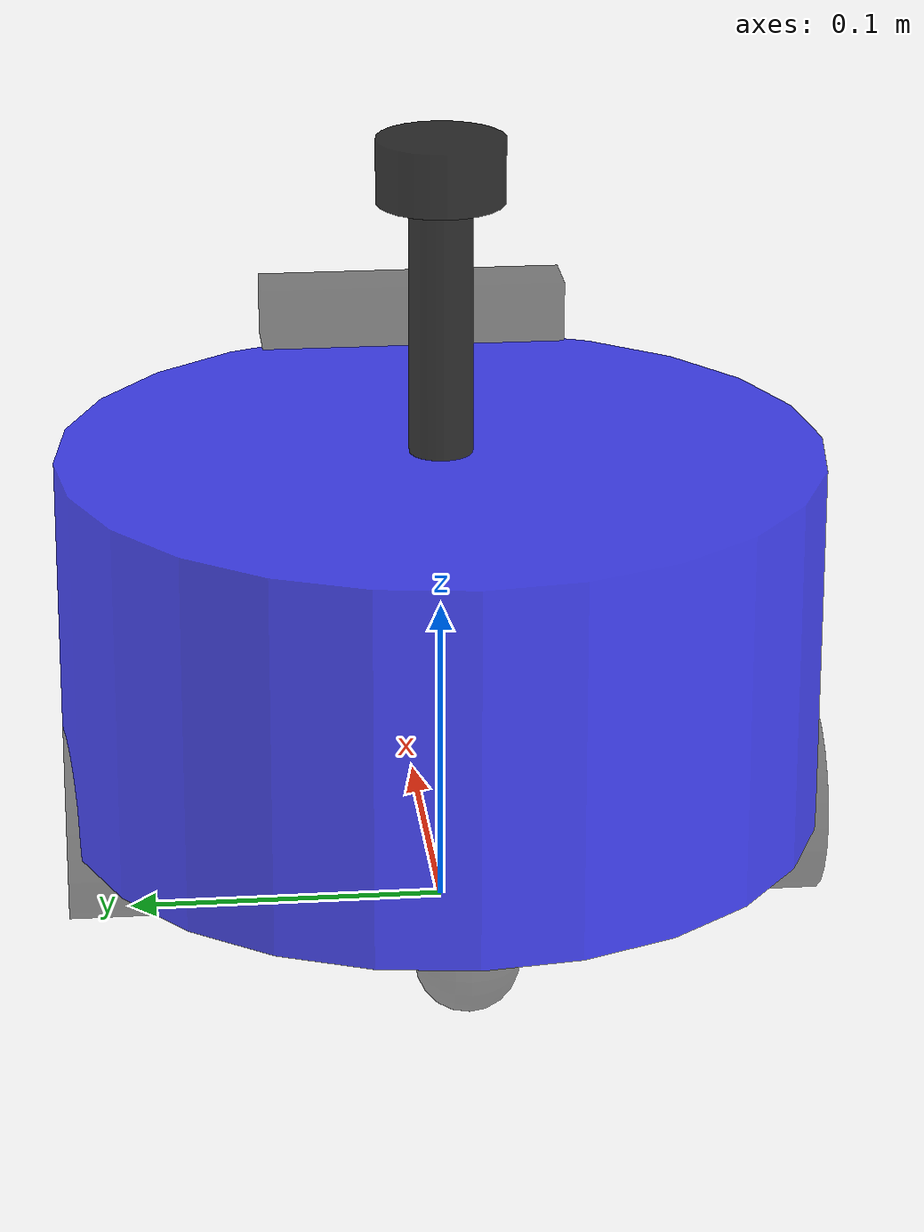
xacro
<?xml version="1.0"?>
<robot xmlns:xacro="http://www.ros.org/wiki/xacro" name="fishbot">
    <xacro:include filename="$(find fishbot_description)/urdf/fishbot/base.urdf.xacro" />
    <!-- 执行器组件 -->
    <xacro:include filename="$(find fishbot_description)/urdf/fishbot/actuator/wheel.urdf.xacro" />
    <xacro:include filename="$(find fishbot_description)/urdf/fishbot/actuator/caster.urdf.xacro" />
    <!-- 传感器组件 -->
    <xacro:include filename="$(find fishbot_description)/urdf/fishbot/sensor/imu.urdf.xacro" />
    <xacro:include filename="$(find fishbot_description)/urdf/fishbot/sensor/laser.urdf.xacro" />
    <xacro:include filename="$(find fishbot_description)/urdf/fishbot/sensor/camera.urdf.xacro" />
    <!-- Gazebo 插件 -->
    <xacro:include filename="$(find fishbot_description)/urdf/fishbot/plugins/gazebo_control_plugin.xacro" />
    <xacro:include filename="$(find fishbot_description)/urdf/fishbot/plugins/gazebo_sensor_plugin.xacro" />
    <xacro:include filename="$(find fishbot_description)/urdf/fishbot/fishbot.ros2_control.xacro" />

    <xacro:base_xacro length="0.12" radius="0.1" />
    <!-- 传感器 -->
    <xacro:imu_xacro xyz="0 0 0.02" />
    <xacro:laser_xacro xyz="0 0 0.10" />
    <xacro:camera_xacro xyz="0.10 0 0.075" />
    <!-- 执行器主动轮+从动轮 -->
    <xacro:wheel_xacro wheel_name="left" xyz="0 0.10 -0.06" />
    <xacro:wheel_xacro wheel_name="right" xyz="0 -0.10 -0.06" />
    <xacro:caster_xacro caster_name="front" xyz="0.08 0.0 -0.076" />
    <xacro:caster_xacro caster_name="back" xyz="-0.08 0.0 -0.076" />

    <xacro:gazebo_sensor_plugin />
    <xacro:fishbot_ros2_control />

</robot>

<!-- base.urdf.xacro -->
<robot xmlns:xacro="http://www.ros.org/wiki/xacro">
    <xacro:include filename="$(find fishbot_description)/urdf/fishbot/common_inertia.xacro" />

    <xacro:macro name="base_xacro" params="length radius">
        <link name="base_footprint" />

        <joint name="base_joint" type="fixed">
            <parent link="base_footprint" />
            <child link="base_link" />
            <origin xyz="0.0 0.0 ${length/2.0+0.0319}" rpy="0 0 0" />
        </joint>

        <link name="base_link">
            <visual>
                <origin xyz="0 0 0.0" rpy="0 0 0" />
                <geometry>
                    <cylinder length="${length}" radius="${length}" />
                </geometry>
                <material name="blue">
                    <color rgba="0.1 0.1 1.0 0.8" />
                </material>
            </visual>
            <collision>
                <origin xyz="0 0 0.0" rpy="0 0 0" />
                <geometry>
                    <cylinder length="${length}" radius="${length}" />
                </geometry>
                <material name="blue">
                    <color rgba="0.1 0.1 1.0 0.8" />
                </material>
            </collision>
            <xacro:cylinder_inertia m="1.0" r="${radius}" h="${length}" />
        </link>

    </xacro:macro>

</robot>

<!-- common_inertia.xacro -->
<robot xmlns:xacro="http://ros.org/wiki/xacro">
    <xacro:macro name="box_inertia" params="m w h d">
        <inertial>
            <mass value="${m}" />
            <inertia ixx="${(m/12) * (h*h + d*d)}" ixy="0.0" ixz="0.0" iyy="${(m/12) * (w*w + d*d)}"
                iyz="0.0" izz="${(m/12) * (w*w + h*h)}" />
        </inertial>
    </xacro:macro>

    <xacro:macro name="cylinder_inertia" params="m r h">
        <inertial>
            <mass value="${m}" />
            <inertia ixx="${(m/12) * (3*r*r + h*h)}" ixy="0" ixz="0" iyy="${(m/12) * (3*r*r + h*h)}"
                iyz="0" izz="${(m/2) * (r*r)}" />
        </inertial>
    </xacro:macro>

    <xacro:macro name="sphere_inertia" params="m r">
        <inertial>
            <mass value="${m}" />
            <inertia ixx="${(2/5) * m * (r*r)}" ixy="0.0" ixz="0.0" iyy="${(2/5) * m * (r*r)}"
                iyz="0.0" izz="${(2/5) * m * (r*r)}" />
        </inertial>
    </xacro:macro>

</robot>

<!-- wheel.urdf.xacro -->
<robot xmlns:xacro="http://www.ros.org/wiki/xacro">
    <xacro:include filename="$(find fishbot_description)/urdf/fishbot/common_inertia.xacro" />
    <xacro:macro name="wheel_xacro" params="wheel_name xyz">

        <link name="${wheel_name}_wheel_link">
            <visual>
                <origin xyz="0 0 0" rpy="1.57079 0 0" />
                <geometry>
                    <cylinder length="0.04" radius="0.032" />
                </geometry>
                <material name="black">
                    <color rgba="0.0 0.0 0.0 0.5"/>
                </material>
            </visual>
            <collision>
                <origin xyz="0 0 0" rpy="1.57079 0 0" />
                <geometry>
                    <cylinder length="0.04" radius="0.032" />
                </geometry>
                <material name="black">
                    <color rgba="0.0 0.0 0.0 0.5"/>
                </material>

            </collision>
            <xacro:cylinder_inertia m="0.1" h="0.04" r="0.032"/>
        </link>

        <joint name="${wheel_name}_wheel_joint" type="continuous">
            <parent link="base_link" />
            <child link="${wheel_name}_wheel_link" />
            <origin xyz="${xyz}" />
            <axis xyz="0 1 0" />
        </joint>

       <gazebo reference="${wheel_name}_wheel_link">
            <material>Gazebo/Black</material>
        </gazebo>

        <gazebo reference="${wheel_name}_wheel_link">
            <mu1 value="20.0" />
            <mu2 value="20.0" />
            <kp value="1000000000.0" />
            <kd value="1.0" />
        </gazebo>

    </xacro:macro>
</robot>

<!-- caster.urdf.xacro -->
<robot xmlns:xacro="http://www.ros.org/wiki/xacro">
    <xacro:macro name="caster_xacro" params="caster_name xyz">
        <xacro:include filename="$(find fishbot_description)/urdf/fishbot/common_inertia.xacro" />

        <link name="${caster_name}_caster_link">
            <visual>
                <origin xyz="0 0 0" rpy="1.57079 0 0" />
                <geometry>
                    <sphere radius="0.016" />
                </geometry>
                <material name="black">
                    <color rgba="0.0 0.0 0.0 0.5" />
                </material>
            </visual>
            <collision>
                <origin xyz="0 0 0" rpy="1.57079 0 0" />
                <geometry>
                    <sphere radius="0.016" />
                </geometry>
                <material name="black">
                    <color rgba="0.0 0.0 0.0 0.5" />
                </material>
            </collision>
            <xacro:sphere_inertia m="0.01" r="0.016" />
        </link>

        <joint name="${caster_name}_caster_joint" type="fixed">
            <parent link="base_link" />
            <child link="${caster_name}_caster_link" />
            <origin xyz="${xyz}" />
        </joint>

        <gazebo reference="${caster_name}_caster_link">
            <material>Gazebo/Black</material>
        </gazebo>

        <gazebo reference="${caster_name}_caster_link">
            <mu1 value="0.0" />
            <mu2 value="0.0" />
            <kp value="1000000000.0" />
            <kd value="1.0" />
        </gazebo>
    </xacro:macro>
</robot>

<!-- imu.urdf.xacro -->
<robot xmlns:xacro="http://www.ros.org/wiki/xacro">
    <xacro:include filename="$(find fishbot_description)/urdf/fishbot/common_inertia.xacro" />

    <xacro:macro name="imu_xacro" params="xyz">
        <!-- ============惯性测量模块================ -->
        <link name="imu_link">
            <visual>
                <origin xyz="0 0 00" rpy="0 0 0" />
                <geometry>
                    <box size="0.02 0.02 0.02" />
                </geometry>
                <material name="black">
                    <color rgba="0 0 0 0.8" />
                </material>
            </visual>
            <collision>
                <origin xyz="0 0 00" rpy="0 0 0" />
                <geometry>
                    <box size="0.02 0.02 0.02" />
                </geometry>
                <material name="black">
                    <color rgba="0 0 0 0.8" />
                </material>
            </collision>
            <xacro:box_inertia m="0.01" w="0.02" d="0.02" h="0.02"/>
        </link>

        <joint name="imu_joint" type="fixed">
            <parent link="base_link" />
            <child link="imu_link" />
            <origin xyz="${xyz}" />
        </joint>

        <sensor name="imu_sensor" type="imu">
            <always_on>1</always_on>
            <update_rate>1</update_rate>
            <visualize>true</visualize>
            <topic>imu</topic>
        </sensor>

    </xacro:macro>

</robot>

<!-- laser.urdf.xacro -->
<robot xmlns:xacro="http://www.ros.org/wiki/xacro">
    <xacro:include filename="$(find fishbot_description)/urdf/fishbot/common_inertia.xacro" />

    <xacro:macro name="laser_xacro" params="xyz">

        <!-- ============雷达支撑杆================ -->
        <link name="laser_cylinder_link">
            <visual>
                <origin xyz="0 0 0" rpy="0 0 0" />
                <geometry>
                    <cylinder length="0.10" radius="0.01" />
                </geometry>
                <material name="black">
                    <color rgba="0.0 0.0 0.0 0.8" />
                </material>
            </visual>
            <collision>
                <origin xyz="0 0 0" rpy="0 0 0" />
                <geometry>
                    <cylinder length="0.10" radius="0.01" />
                </geometry>
                <material name="black">
                    <color rgba="0.0 0.0 0.0 0.8" />
                </material>
            </collision>
            <xacro:cylinder_inertia m="0.01" r="0.01" h="0.10" />
        </link>

        <!-- ============雷达================ -->
        <joint name="laser_cylinder_joint" type="fixed">
            <parent link="base_link" />
            <child link="laser_cylinder_link" />
            <origin xyz="${xyz}" />
        </joint>

        <link name="laser_link">
            <visual>
                <origin xyz="0 0 0" rpy="0 0 0" />
                <geometry>
                    <cylinder length="0.02" radius="0.02" />
                </geometry>
                <material name="black">
                    <color rgba="0.0 0.0 0.0 0.8" />
                </material>
            </visual>
            <collision>
                <origin xyz="0 0 0" rpy="0 0 0" />
                <geometry>
                    <cylinder length="0.02" radius="0.02" />
                </geometry>
                <material name="black">
                    <color rgba="0.0 0.0 0.0 0.8" />
                </material>
            </collision>
            <xacro:cylinder_inertia m="0.03" r="0.02" h="0.02" />

            <sensor name='gpu_lidar' type='gpu_lidar'>
                <topic>lidar</topic>
                <update_rate>10</update_rate>
                <lidar>
                    <scan>
                        <horizontal>
                            <samples>640</samples>
                            <resolution>1</resolution>
                            <min_angle>-1.396263</min_angle>
                            <max_angle>1.396263</max_angle>
                        </horizontal>
                        <vertical>
                            <samples>16</samples>
                            <resolution>1</resolution>
                            <min_angle>-0.261799</min_angle>
                            <max_angle>0.261799</max_angle>
                        </vertical>
                    </scan>
                    <range>
                        <min>0.08</min>
                        <max>10.0</max>
                        <resolution>0.01</resolution>
                    </range>
                </lidar>
                <alwaysOn>1</alwaysOn>
                <visualize>true</visualize>
            </sensor>
        </link>

        <joint name="laser_joint" type="fixed">
            <parent link="laser_cylinder_link" />
            <child link="laser_link" />
            <origin xyz="0 0 0.05" />
        </joint>

        <gazebo reference="laser_cylinder_link">
            <material>Gazebo/Black</material>
        </gazebo>
        <gazebo reference="laser_link">
            <material>Gazebo/Black</material>
        </gazebo>

    </xacro:macro>

</robot>

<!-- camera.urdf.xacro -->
<robot xmlns:xacro="http://www.ros.org/wiki/xacro">
    <xacro:include filename="$(find fishbot_description)/urdf/fishbot/common_inertia.xacro" />

    <xacro:macro name="camera_xacro" params="xyz">
        <!-- ============相机模块================ -->
        <link name="camera_link">
            <visual>
                <origin xyz="0 0 0.0" rpy="0 0 0" />
                <geometry>
                    <box size="0.02 0.10 0.02" />
                </geometry>
                <material name="black">
                    <color rgba="0.0 0.0 0.0 0.5" />
                </material>
            </visual>
            <collision>
                <origin xyz="0 0 0.0" rpy="0 0 0" />
                <geometry>
                    <box size="0.02 0.10 0.02" />
                </geometry>
                <material name="black">
                    <color rgba="0.0 0.0 0.0 0.5" />
                </material>
            </collision>
            <xacro:box_inertia m="0.01" w="0.02" h="0.10" d="0.02" />
        </link>

        <joint name="camera_joint" type="fixed">
            <parent link="base_link" />
            <child link="camera_link" />
            <origin xyz="${xyz}" />
        </joint>

        <gazebo reference="camera_link">
            <material>Gazebo/Blue</material>
        </gazebo>

        <link name="camera_optical_link"></link>

        <joint name="camera_optical_joint" type="fixed">
            <parent link="camera_link" />
            <child link="camera_optical_link" />
            <origin xyz="0 0 0" rpy="${-pi/2} 0 ${-pi/2}" />
        </joint>

    </xacro:macro>

</robot>
